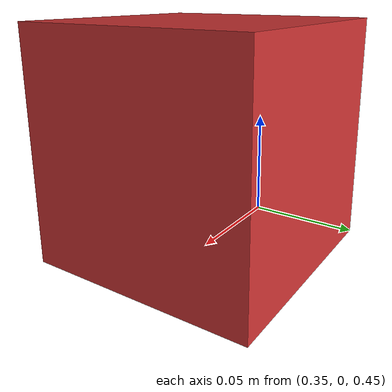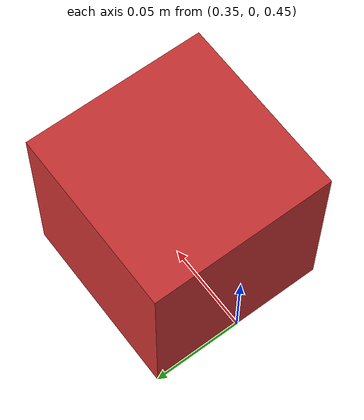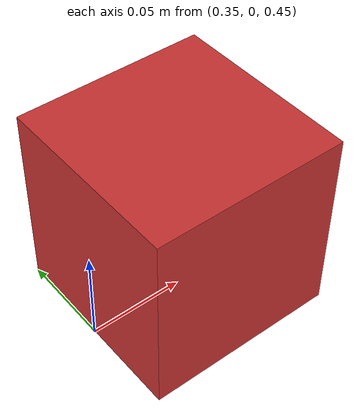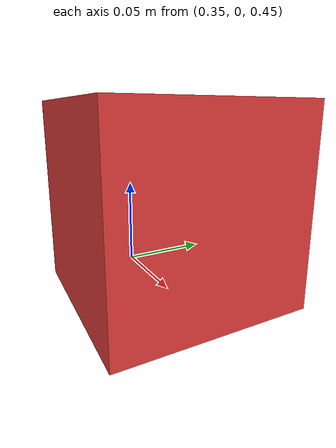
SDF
<?xml version="1.0" ?>
<sdf version="1.6">
  <world name="default">

    <!--common plugins-->
    <physics name="1ms" type="ignored">
      <max_step_size>0.001</max_step_size>
      <real_time_factor>1.0</real_time_factor>
    </physics>
    <plugin
      filename="gz-sim-physics-system"
      name="gz::sim::systems::Physics">
    </plugin>
    <plugin
      filename="gz-sim-sensors-system"
      name="gz::sim::systems::Sensors">
      <render_engine>ogre2</render_engine>
    </plugin>
    <plugin
      filename="gz-sim-user-commands-system"
      name="gz::sim::systems::UserCommands">
    </plugin>
    <plugin
      filename="gz-sim-scene-broadcaster-system"
      name="gz::sim::systems::SceneBroadcaster">
    </plugin>

    <plugin
      filename="gz-sim-contact-system"
      name="gz::sim::systems::Contact">
    </plugin>

    <!--attachable joint plugin-->
    <plugin filename="libattachable_joint_plugin.so" name="attachable_joint::AttachableJoint">
        <attachtopic>/attach</attachtopic>
    </plugin>

    <!-- light -->
    <light type="directional" name="sun">
      <cast_shadows>false</cast_shadows>
      <pose>0 0 10 0 0 0</pose>
      <diffuse>0.8 0.8 0.8 1</diffuse>
      <specular>0.2 0.2 0.2 1</specular>
      <attenuation>
        <range>1000</range>
        <constant>0.9</constant>
        <linear>0.01</linear>
        <quadratic>0.001</quadratic>
      </attenuation>
      <direction>-0.5 0.1 -0.9</direction>
    </light>

    <!--box -->
    <model name="box1">
        <static>false</static>
        <pose>0.4 0 0.5 0 0 0</pose>
        <link name="box_body">
        <visual name="v1">
            <geometry>
            <box><size>0.1 0.1 0.1</size></box>
            </geometry>
            <material>
            <diffuse>0.8 0.2 0.2 1</diffuse>
            <specular>1.0 0 0 1</specular>
            </material>
        </visual>
        <collision name="c1">
            <geometry>
            <box><size>0.1 0.1 0.1</size></box>
            </geometry>
        </collision>
        <inertial>
          <mass value="0.001"/>
          <origin xyz="0 0 0" rpy="0 0 0"/>
          <inertia ixx="0.000034533333" ixy="0" ixz="0"
                  iyx="0" iyy="0.000034533333" iyz="0"
                  izx="0" izy="0" izz="0.0000648"/>
        </inertial>
        </link>
    </model>

    <!-- ground -->
    <model name="ground_plane">
      <static>true</static>
      <link name="link">
        <collision name="collision">
          <geometry>
            <plane>
              <normal>0 0 1</normal>
            </plane>
          </geometry>
        </collision>
        <visual name="visual">
          <geometry>
            <plane>
              <normal>0 0 1</normal>
              <size>100 100</size>
            </plane>
          </geometry>
          <material>
            <ambient>0.8 0.8 0.8 1</ambient>
            <diffuse>0.8 0.8 0.8 1</diffuse>
            <specular>0.8 0.8 0.8 1</specular>
          </material>
        </visual>
      </link>
    </model>
  </world>

</sdf>
